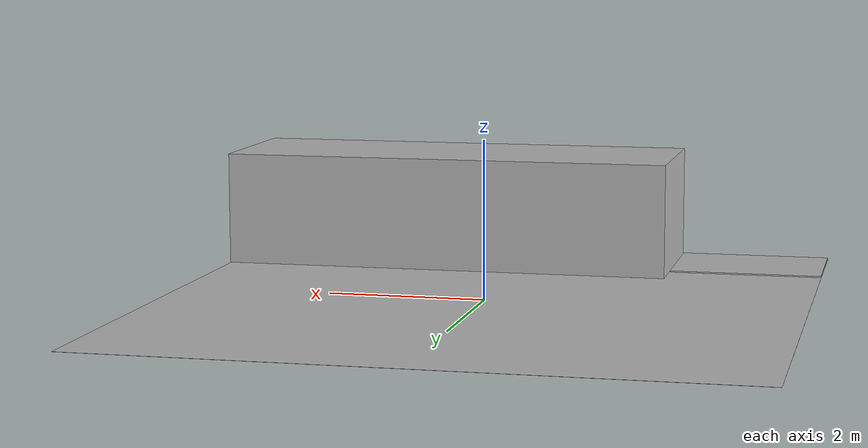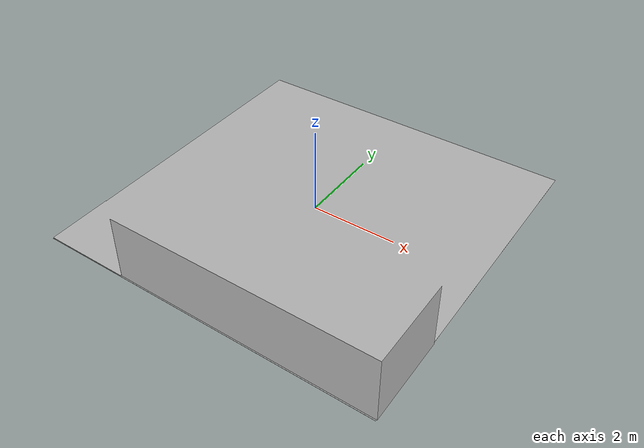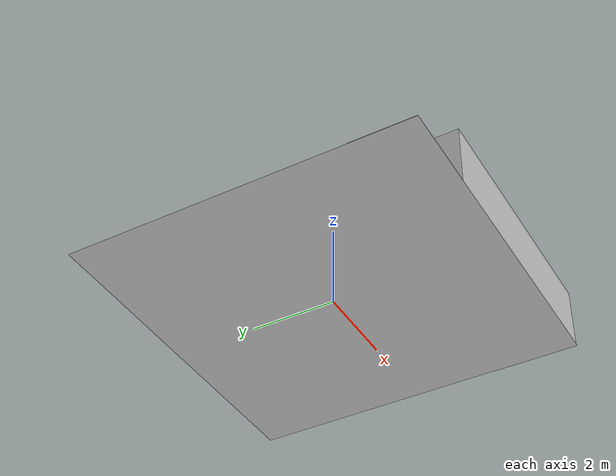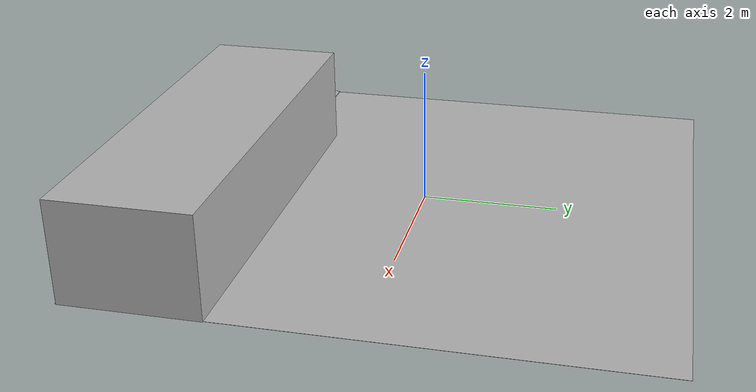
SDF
<?xml version="1.0" ?>
<sdf version="1.9">
  <model name="Robocup1">
    <static>true</static>
    <link name="link">
      <visual name="visual">
        <geometry>
          <mesh>
            <uri>model://Robocup1/meshes/Robocup1.dae</uri>
          </mesh>
        </geometry>
      </visual>
      <collision name="collision">
        <geometry>
          <mesh>
            <uri>model://Robocup1/meshes/Robocup1.dae</uri>
          </mesh>
        </geometry>
      </collision>
    </link>
  </model>
</sdf>
